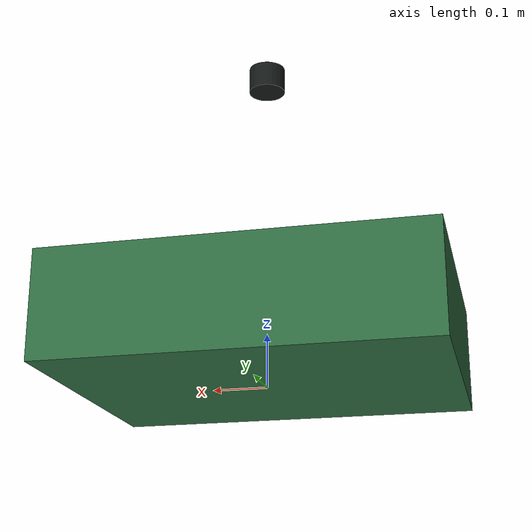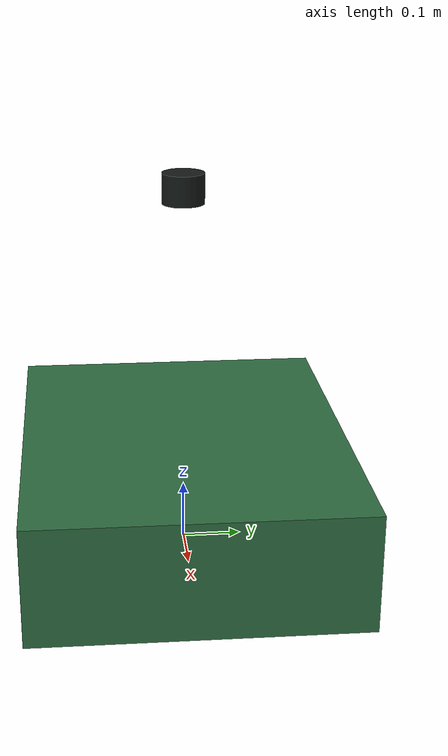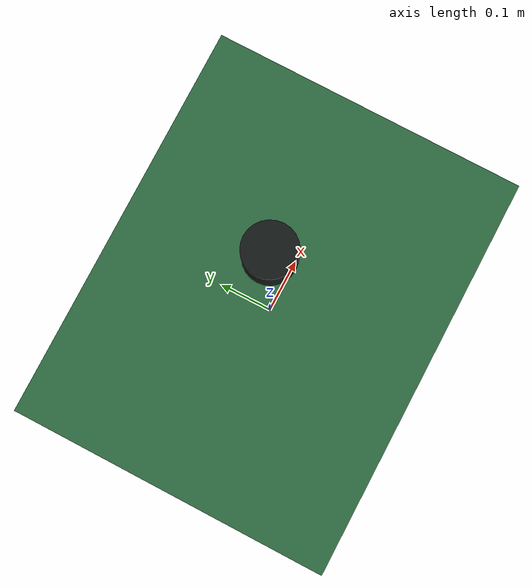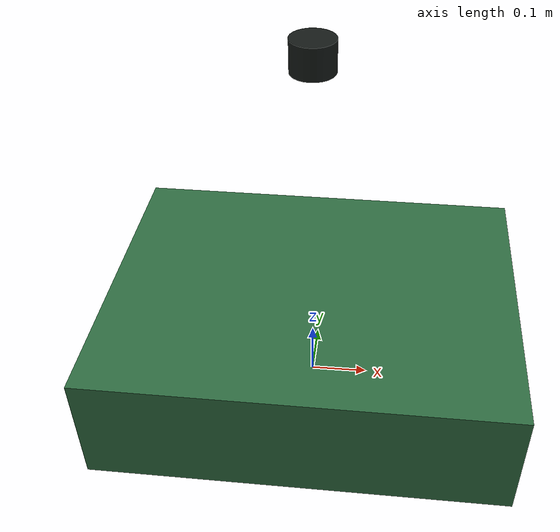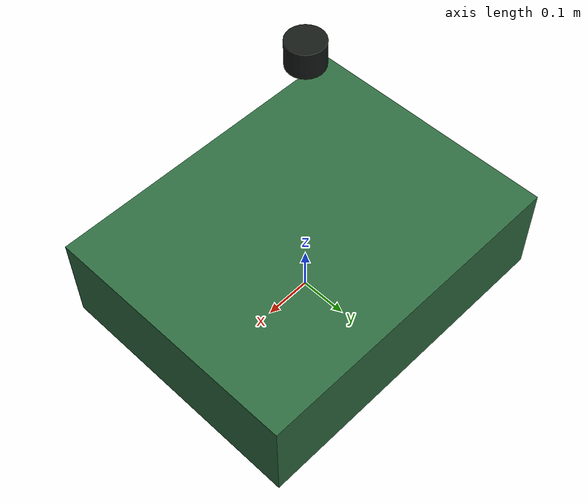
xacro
<?xml version="1.0"?>
<robot name="agt_base" xmlns:xacro="http://www.ros.org/wiki/xacro">
  <!-- All dimensions are launch-overridable. Defaults are provisional until measured. -->
  <xacro:arg name="base_length" default="0.70"/>
  <xacro:arg name="base_width" default="0.55"/>
  <xacro:arg name="base_height" default="0.20"/>
  <xacro:arg name="base_link_z" default="0.10"/>
  <xacro:arg name="lidar_x" default="0.0"/>
  <xacro:arg name="lidar_y" default="0.0"/>
  <xacro:arg name="lidar_z" default="0.50"/>
  <xacro:arg name="lidar_roll" default="0.0"/>
  <xacro:arg name="lidar_pitch" default="0.0"/>
  <xacro:arg name="lidar_yaw" default="0.0"/>
  <xacro:arg name="gps_x" default="0.0"/>
  <xacro:arg name="gps_y" default="0.0"/>
  <xacro:arg name="gps_z" default="0.0"/>
  <xacro:arg name="gps_roll" default="0.0"/>
  <xacro:arg name="gps_pitch" default="0.0"/>
  <xacro:arg name="gps_yaw" default="0.0"/>

  <material name="agt_green">
    <color rgba="0.18 0.42 0.25 1.0"/>
  </material>
  <material name="sensor_black">
    <color rgba="0.08 0.10 0.09 1.0"/>
  </material>

  <link name="base_footprint"/>

  <link name="base_link">
    <visual>
      <origin xyz="0 0 0" rpy="0 0 0"/>
      <geometry>
        <box size="$(arg base_length) $(arg base_width) $(arg base_height)"/>
      </geometry>
      <material name="agt_green"/>
    </visual>
    <collision>
      <origin xyz="0 0 0" rpy="0 0 0"/>
      <geometry>
        <box size="$(arg base_length) $(arg base_width) $(arg base_height)"/>
      </geometry>
    </collision>
  </link>

  <joint name="base_footprint_to_base_link" type="fixed">
    <parent link="base_footprint"/>
    <child link="base_link"/>
    <origin xyz="0 0 $(arg base_link_z)" rpy="0 0 0"/>
  </joint>

  <link name="lidar_link">
    <visual>
      <origin xyz="0 0 0.025" rpy="0 0 0"/>
      <geometry>
        <cylinder radius="0.035" length="0.050"/>
      </geometry>
      <material name="sensor_black"/>
    </visual>
  </link>

  <joint name="base_link_to_lidar_link" type="fixed">
    <parent link="base_link"/>
    <child link="lidar_link"/>
    <origin
      xyz="$(arg lidar_x) $(arg lidar_y) $(arg lidar_z)"
      rpy="$(arg lidar_roll) $(arg lidar_pitch) $(arg lidar_yaw)"/>
  </joint>

  <!-- Keep the driver's established frame while exposing a sensor-neutral frame. -->
  <link name="livox_frame"/>
  <joint name="lidar_link_to_livox_frame" type="fixed">
    <parent link="lidar_link"/>
    <child link="livox_frame"/>
    <origin xyz="0 0 0" rpy="0 0 0"/>
  </joint>

  <!-- MID360 point cloud and built-in IMU share the calibrated sensor origin. -->
  <link name="imu_link"/>
  <joint name="lidar_link_to_imu_link" type="fixed">
    <parent link="lidar_link"/>
    <child link="imu_link"/>
    <origin xyz="0 0 0" rpy="0 0 0"/>
  </joint>

  <!-- GNSS antenna pose is deliberately provisional until physically measured. -->
  <link name="gps_link"/>
  <joint name="base_link_to_gps_link" type="fixed">
    <parent link="base_link"/>
    <child link="gps_link"/>
    <origin
      xyz="$(arg gps_x) $(arg gps_y) $(arg gps_z)"
      rpy="$(arg gps_roll) $(arg gps_pitch) $(arg gps_yaw)"/>
  </joint>
</robot>
